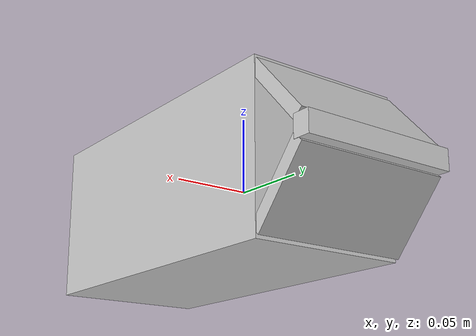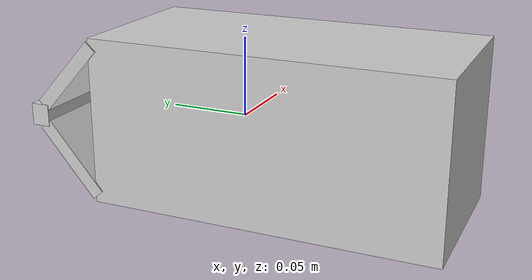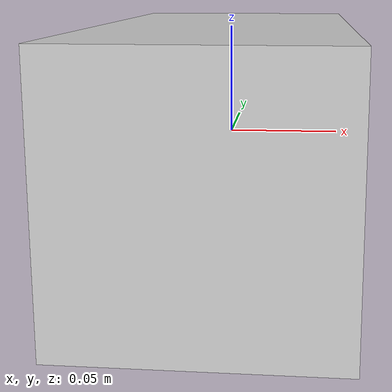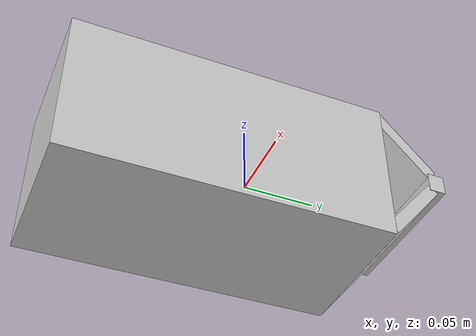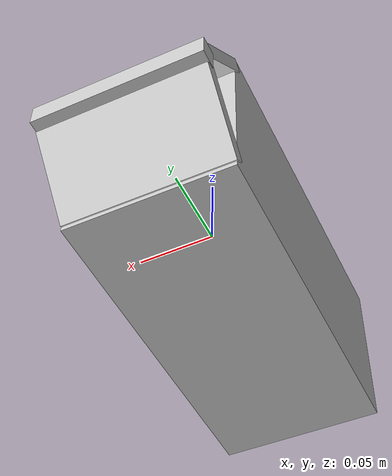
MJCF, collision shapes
<mujoco model="textured">
  <asset>
    <texture file="texture_map.png" name="tex-textured" type="2d" />
    <material name="textured" reflectance="0.5" texrepeat="1 1" texture="tex-textured" texuniform="false" />
    <mesh file="visual/textured_vis.msh" name="textured_vis" scale="0.015 0.015 0.015" />
  </asset>

  <worldbody>
    <body>
      <body name="object">

        <!-- 视觉 mesh -->
        <geom solimp="0.998 0.998 0.001" solref="0.001 1"
              density="100" friction="0.95 0.3 0.1"
              type="mesh" mesh="textured_vis"
              conaffinity="0" contype="0"
              group="1" material="textured" />

        <!-- 碰撞体（已 ×2） -->
        <geom solimp="0.998 0.998 0.001" solref="0.001 1"
              density="100" friction="0.95 0.3 0.1"
              type="box"
              pos="0.00074 -0.03000 0.00000"
              quat="0.70711 0.70711 0.00000 -0.00000"
              size="0.05250 0.05250 0.10950"
              group="0" rgba="0.8 0.8 0.8 0.3" />

        <geom solimp="0.998 0.998 0.001" solref="0.001 1"
              density="100" friction="0.95 0.3 0.1"
              type="box"
              pos="0.00010 0.09568 0.02704"
              quat="0.28687 0.64630 -0.28687 -0.64630"
              size="0.00436 0.02762 0.05262"
              group="0" rgba="0.8 0.8 0.8 0.3" />

        <geom solimp="0.998 0.998 0.001" solref="0.001 1"
              density="100" friction="0.95 0.3 0.1"
              type="box"
              pos="0.00010 0.09568 -0.02688"
              quat="0.64203 0.29630 0.64203 0.29630"
              size="0.00436 0.02762 0.05262"
              group="0" rgba="0.8 0.8 0.8 0.3" />

        <geom solimp="0.998 0.998 0.001" solref="0.001 1"
              density="100" friction="0.95 0.3 0.1"
              type="box"
              pos="0.00010 0.11698 0.00010"
              quat="0.50000 0.50000 -0.50000 -0.50000"
              size="0.00590 0.00696 0.05300"
              group="0" rgba="0.8 0.8 0.8 0.3" />

      </body>

      <!-- 辅助 site（不参与碰撞） -->
      <site rgba="0 0 0 0" size="0.005" pos="0 0 -0.06" name="bottom_site" />
      <site rgba="0 0 0 0" size="0.005" pos="0 0 0.04" name="top_site" />
      <site rgba="0 0 0 0" size="0.005" pos="0.03 0.03 0" name="horizontal_radius_site" />

    </body>
  </worldbody>
</mujoco>
